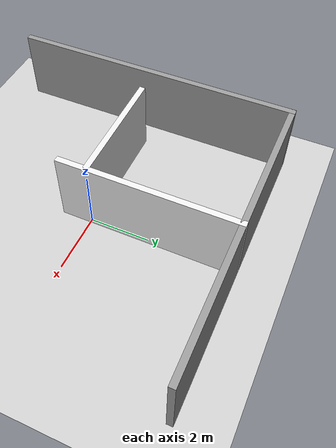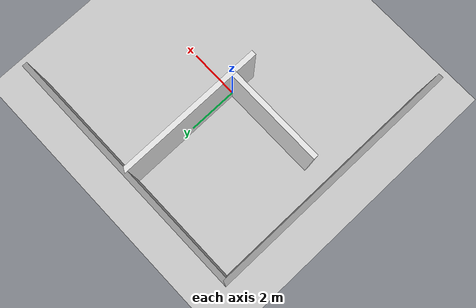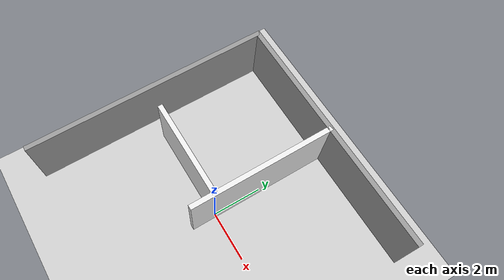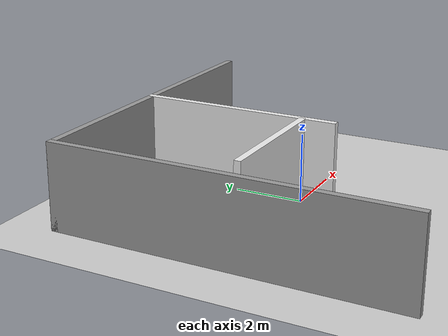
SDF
<?xml version="1.0" ?>
<sdf version="1.6">
  <world name="simple_world">

    <!-- Use default physics and sky -->
    <include>
      <uri>model://sun</uri>
    </include>
    <include>
      <uri>model://ground_plane</uri>
    </include>

    <!-- Add walls -->

    <!-- Wall 1: Ngang trên cùng -->
    <model name="wall1">
      <static>true</static>
      <link name="link">
        <collision name="collision">
          <geometry>
            <box>
              <size>10 0.2 2.5</size> <!-- Dài 10m, rộng 0.2m, cao 2.5m -->
            </box>
          </geometry>
        </collision>
        <visual name="visual">
          <geometry>
            <box>
              <size>10 0.2 2.5</size>
            </box>
          </geometry>
          <material>
            <script>
              <uri>file://media/materials/scripts/gazebo.material</uri>
              <name>Gazebo/Grey</name>
            </script>
          </material>
        </visual>
        <pose>0 4.9 1.25 0 0 0</pose> <!-- Đặt sát mép trên -->
      </link>
    </model>

    <!-- Wall 2: Dọc trái -->
    <model name="wall2">
      <static>true</static>
      <link name="link">
        <collision name="collision">
          <geometry>
            <box>
              <size>0.2 10 2.5</size> <!-- Dài 10m, rộng 0.2m -->
            </box>
          </geometry>
        </collision>
        <visual name="visual">
          <geometry>
            <box>
              <size>0.2 10 2.5</size>
            </box>
          </geometry>
          <material>
            <script>
              <uri>file://media/materials/scripts/gazebo.material</uri>
              <name>Gazebo/Grey</name>
            </script>
          </material>
        </visual>
        <pose>-4.9 0 1.25 0 0 0</pose> <!-- Sát mép trái -->
      </link>
    </model>

    <!-- Wall 3: Vách chắn giữa -->
    <model name="wall3">
      <static>true</static>
      <link name="link">
        <collision name="collision">
          <geometry>
            <box>
              <size>0.2 6 2.5</size> <!-- Dài 6m -->
            </box>
          </geometry>
        </collision>
        <visual name="visual">
          <geometry>
            <box>
              <size>0.2 6 2.5</size>
            </box>
          </geometry>
          <material>
            <script>
              <uri>file://media/materials/scripts/gazebo.material</uri>
              <name>Gazebo/White</name>
            </script>
          </material>
        </visual>
        <pose>0 2 1.25 0 0 0</pose> <!-- Một bức chắn giữa, để hở lối đi 2m -->
      </link>
    </model>

    <!-- Wall 4: Một bức chắn phụ tạo hẻm -->
    <model name="wall4">
      <static>true</static>
      <link name="link">
        <collision name="collision">
          <geometry>
            <box>
              <size>4 0.2 2.5</size> <!-- Dài 4m -->
            </box>
          </geometry>
        </collision>
        <visual name="visual">
          <geometry>
            <box>
              <size>4 0.2 2.5</size>
            </box>
          </geometry>
          <material>
            <script>
              <uri>file://media/materials/scripts/gazebo.material</uri>
              <name>Gazebo/White</name>
            </script>
          </material>
        </visual>
        <pose>-2 0 1.25 0 0 0</pose> <!-- Nằm ngang tạo thêm lối nhỏ -->
      </link>
    </model>

  </world>
</sdf>
